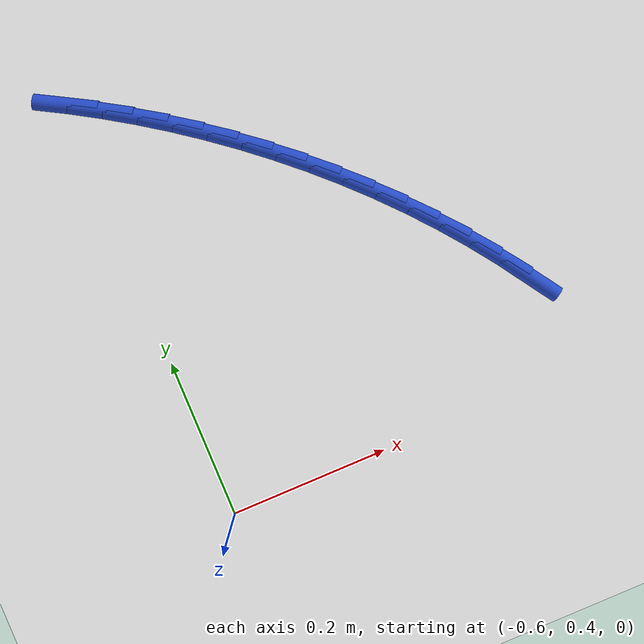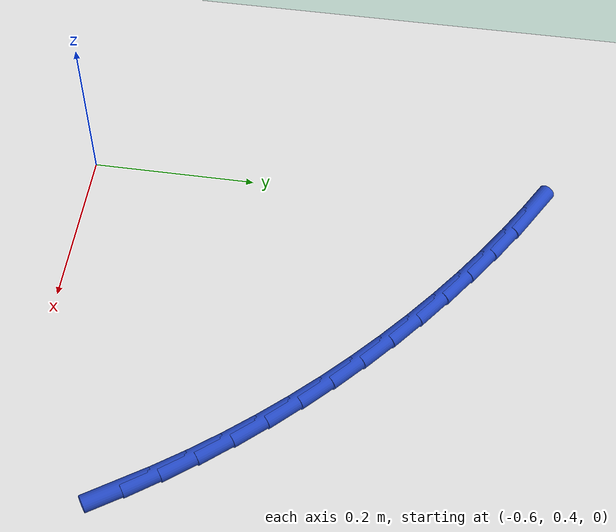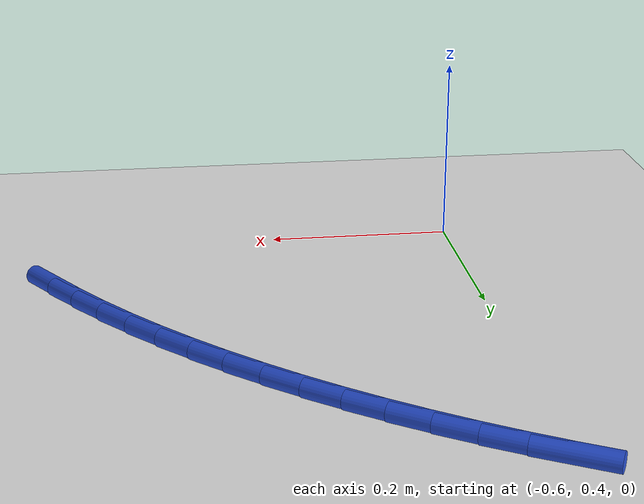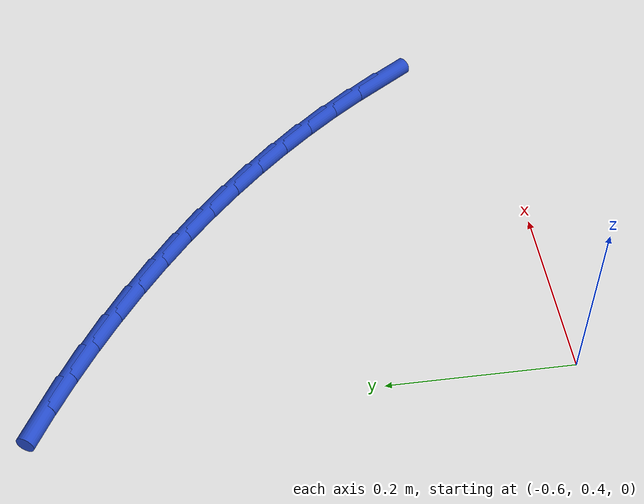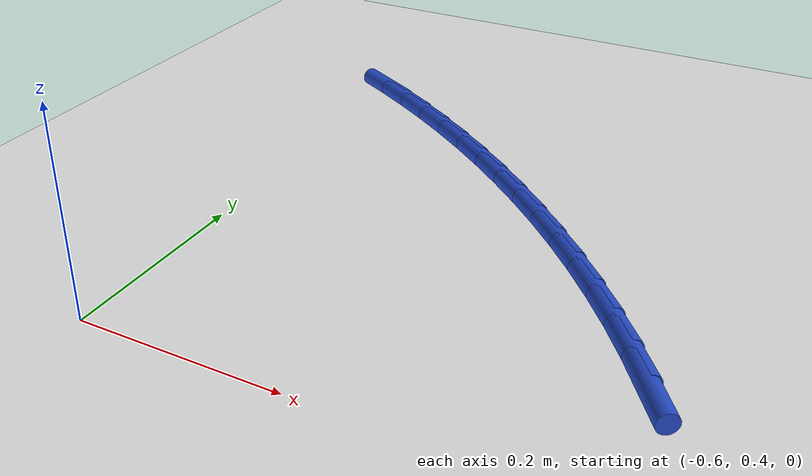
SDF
<sdf version="1.6">
 <world name="default">
  <model name="ground_plane">
   <static>1</static>
   <link name="link">
    <collision name="collision">
     <geometry><plane><normal>0 0 1</normal><size>100 100</size></plane></geometry>
     <surface><friction><ode><mu>100</mu><mu2>50</mu2></ode></friction></surface>
    </collision>
    <visual name="visual">
     <cast_shadows>0</cast_shadows>
     <geometry><plane><normal>0 0 1</normal><size>100 100</size></plane></geometry>
     <material>
      <script><uri>file://media/materials/scripts/gazebo.material</uri><name>Gazebo/WhiteGlow</name></script>
     </material>
    </visual>
   </link>
  </model>
  <model name="line">
   <link name="link_13">
    <pose>-0.15346319635185235 0.5275652587862515 0.01 0 1.57 -0.9835054612642777</pose>
    <collision name="collision">
     <geometry><cylinder><radius>0.01</radius><length>0.08</length></cylinder></geometry>
    </collision>
    <visual name="visual">
     <material>
      <script><name>Gazebo/Blue</name><uri>file://media/materials/scripts/gazebo.material</uri></script>
     </material>
     <geometry><cylinder><radius>0.01</radius><length>0.08</length></cylinder></geometry>
    </visual>
   </link>
   <link name="link_14">
    <pose>-0.17741761953744398 0.5635523629328721 0.01 0 1.57 -0.9445230080466954</pose>
    <collision name="collision">
     <geometry><cylinder><radius>0.01</radius><length>0.08</length></cylinder></geometry>
    </collision>
    <visual name="visual">
     <material>
      <script><name>Gazebo/Blue</name><uri>file://media/materials/scripts/gazebo.material</uri></script>
     </material>
     <geometry><cylinder><radius>0.01</radius><length>0.08</length></cylinder></geometry>
    </visual>
   </link>
   <link name="link_15">
    <pose>-0.20281865678379035 0.5986646830030683 0.01 0 1.57 -0.9066783392365816</pose>
    <collision name="collision">
     <geometry><cylinder><radius>0.01</radius><length>0.08</length></cylinder></geometry>
    </collision>
    <visual name="visual">
     <material>
      <script><name>Gazebo/Blue</name><uri>file://media/materials/scripts/gazebo.material</uri></script>
     </material>
     <geometry><cylinder><radius>0.01</radius><length>0.08</length></cylinder></geometry>
    </visual>
   </link>
   <link name="link_16">
    <pose>-0.22959435624926208 0.6328730141016998 0.01 0 1.57 -0.869897808555295</pose>
    <collision name="collision">
     <geometry><cylinder><radius>0.01</radius><length>0.08</length></cylinder></geometry>
    </collision>
    <visual name="visual">
     <material>
      <script><name>Gazebo/Blue</name><uri>file://media/materials/scripts/gazebo.material</uri></script>
     </material>
     <geometry><cylinder><radius>0.01</radius><length>0.08</length></cylinder></geometry>
    </visual>
   </link>
   <link name="link_17">
    <pose>-0.25767276609223 0.6661481513336269 0.01 0 1.57 -0.8341015389909325</pose>
    <collision name="collision">
     <geometry><cylinder><radius>0.01</radius><length>0.08</length></cylinder></geometry>
    </collision>
    <visual name="visual">
     <material>
      <script><name>Gazebo/Blue</name><uri>file://media/materials/scripts/gazebo.material</uri></script>
     </material>
     <geometry><cylinder><radius>0.01</radius><length>0.08</length></cylinder></geometry>
    </visual>
   </link>
   <link name="link_18">
    <pose>-0.28698193447106496 0.6984608898037096 0.01 0 1.57 -0.7992048929246198</pose>
    <collision name="collision">
     <geometry><cylinder><radius>0.01</radius><length>0.08</length></cylinder></geometry>
    </collision>
    <visual name="visual">
     <material>
      <script><name>Gazebo/Blue</name><uri>file://media/materials/scripts/gazebo.material</uri></script>
     </material>
     <geometry><cylinder><radius>0.01</radius><length>0.08</length></cylinder></geometry>
    </visual>
   </link>
   <link name="link_19">
    <pose>-0.31744990954413765 0.729782024616808 0.01 0 1.57 -0.765119632409637</pose>
    <collision name="collision">
     <geometry><cylinder><radius>0.01</radius><length>0.08</length></cylinder></geometry>
    </collision>
    <visual name="visual">
     <material>
      <script><name>Gazebo/Blue</name><uri>file://media/materials/scripts/gazebo.material</uri></script>
     </material>
     <geometry><cylinder><radius>0.01</radius><length>0.08</length></cylinder></geometry>
    </visual>
   </link>
   <link name="link_20">
    <pose>-0.3490047394698191 0.7600823508777829 0.01 0 1.57 -0.7317547946205222</pose>
    <collision name="collision">
     <geometry><cylinder><radius>0.01</radius><length>0.08</length></cylinder></geometry>
    </collision>
    <visual name="visual">
     <material>
      <script><name>Gazebo/Blue</name><uri>file://media/materials/scripts/gazebo.material</uri></script>
     </material>
     <geometry><cylinder><radius>0.01</radius><length>0.08</length></cylinder></geometry>
    </visual>
   </link>
   <link name="link_21">
    <pose>-0.38157447240647974 0.7893326636914932 0.01 0 1.57 -0.6990173117292043</pose>
    <collision name="collision">
     <geometry><cylinder><radius>0.01</radius><length>0.08</length></cylinder></geometry>
    </collision>
    <visual name="visual">
     <material>
      <script><name>Gazebo/Blue</name><uri>file://media/materials/scripts/gazebo.material</uri></script>
     </material>
     <geometry><cylinder><radius>0.01</radius><length>0.08</length></cylinder></geometry>
    </visual>
   </link>
   <link name="link_22">
    <pose>-0.41508715651249073 0.8175037581628002 0.01 0 1.57 -0.6668124054837108</pose>
    <collision name="collision">
     <geometry><cylinder><radius>0.01</radius><length>0.08</length></cylinder></geometry>
    </collision>
    <visual name="visual">
     <material>
      <script><name>Gazebo/Blue</name><uri>file://media/materials/scripts/gazebo.material</uri></script>
     </material>
     <geometry><cylinder><radius>0.01</radius><length>0.08</length></cylinder></geometry>
    </visual>
   </link>
   <link name="link_23">
    <pose>-0.4494708399462225 0.8445664293965631 0.01 0 1.57 -0.6350437856710014</pose>
    <collision name="collision">
     <geometry><cylinder><radius>0.01</radius><length>0.08</length></cylinder></geometry>
    </collision>
    <visual name="visual">
     <material>
      <script><name>Gazebo/Blue</name><uri>file://media/materials/scripts/gazebo.material</uri></script>
     </material>
     <geometry><cylinder><radius>0.01</radius><length>0.08</length></cylinder></geometry>
    </visual>
   </link>
   <link name="link_24">
    <pose>-0.4846535708660458 0.8704914724976424 0.01 0 1.57 -0.6036136793202108</pose>
    <collision name="collision">
     <geometry><cylinder><radius>0.01</radius><length>0.08</length></cylinder></geometry>
    </collision>
    <visual name="visual">
     <material>
      <script><name>Gazebo/Blue</name><uri>file://media/materials/scripts/gazebo.material</uri></script>
     </material>
     <geometry><cylinder><radius>0.01</radius><length>0.08</length></cylinder></geometry>
    </visual>
   </link>
   <link name="link_25">
    <pose>-0.5205633974303319 0.8952496825708984 0.01 0 1.57 -0.5724227146235553</pose>
    <collision name="collision">
     <geometry><cylinder><radius>0.01</radius><length>0.08</length></cylinder></geometry>
    </collision>
    <visual name="visual">
     <material>
      <script><name>Gazebo/Blue</name><uri>file://media/materials/scripts/gazebo.material</uri></script>
     </material>
     <geometry><cylinder><radius>0.01</radius><length>0.08</length></cylinder></geometry>
    </visual>
   </link>
   <link name="link_26">
    <pose>-0.5571283677974513 0.9188118547211913 0.01 0 1.57 -0.5413696806217454</pose>
    <collision name="collision">
     <geometry><cylinder><radius>0.01</radius><length>0.08</length></cylinder></geometry>
    </collision>
    <visual name="visual">
     <material>
      <script><name>Gazebo/Blue</name><uri>file://media/materials/scripts/gazebo.material</uri></script>
     </material>
     <geometry><cylinder><radius>0.01</radius><length>0.08</length></cylinder></geometry>
    </visual>
   </link>
   <link name="link_27">
    <pose>-0.5942765301257746 0.9411487840533805 0.01 0 1.57 -0.5105320126616849</pose>
    <collision name="collision">
     <geometry><cylinder><radius>0.01</radius><length>0.08</length></cylinder></geometry>
    </collision>
    <visual name="visual">
     <material>
      <script><name>Gazebo/Blue</name><uri>file://media/materials/scripts/gazebo.material</uri></script>
     </material>
     <geometry><cylinder><radius>0.01</radius><length>0.08</length></cylinder></geometry>
    </visual>
   </link>
  </model>
 </world>
</sdf>
